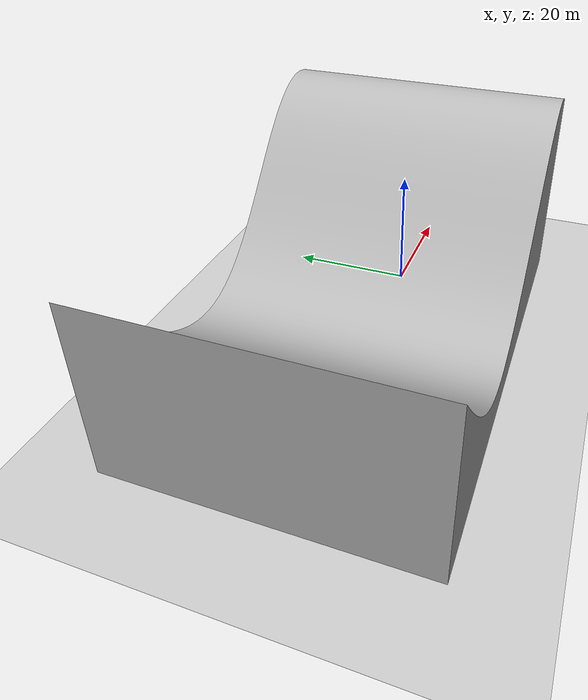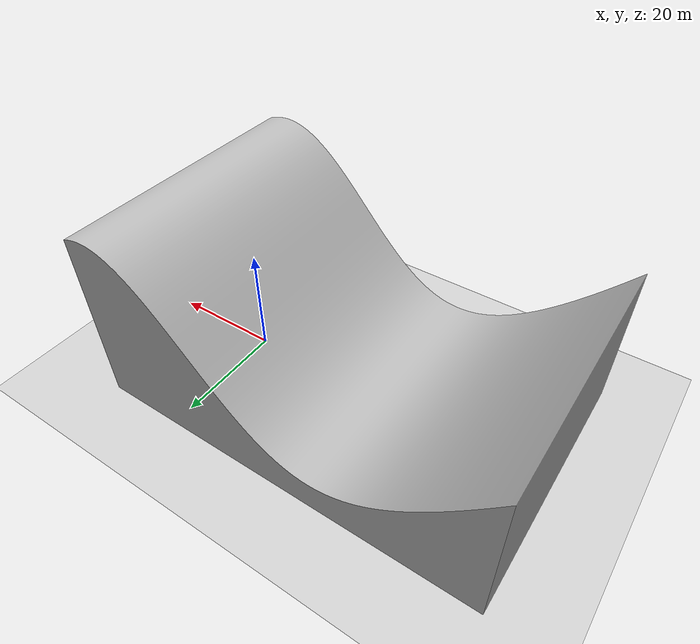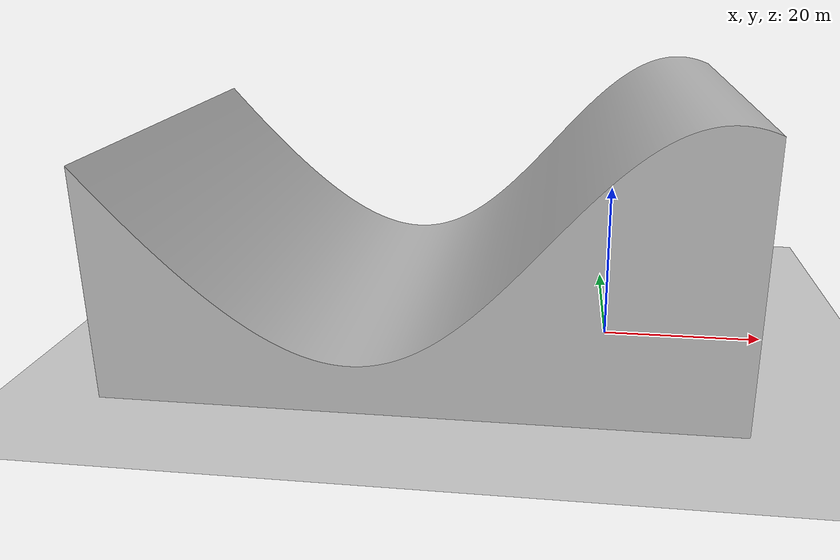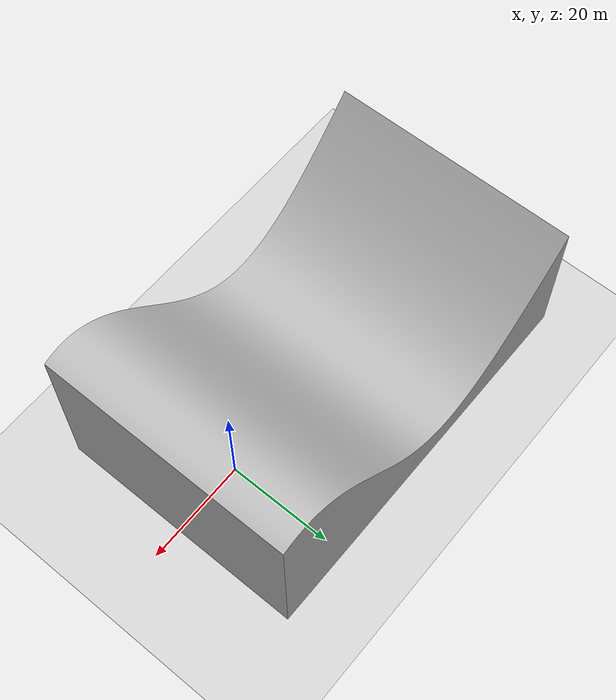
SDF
<sdf version="1.7">
 <world name="default">
  <gazebo><plugin name="car_color_plugin" filename="libcar_test_plugin.so"/></gazebo>
  <model name="ground_plane">
   <static>1</static>
   <link name="link">
    <collision name="collision">
     <geometry><plane><normal>0 0 1</normal><size>100 100</size></plane></geometry>
     <surface>
      <contact><collide_bitmask>65535</collide_bitmask></contact>
      <friction><ode><mu>100</mu><mu2>100</mu2></ode></friction>
     </surface>
    </collision>
    <visual name="visual">
     <cast_shadows>0</cast_shadows>
     <geometry><plane><normal>0 0 1</normal><size>100 100</size></plane></geometry>
     <material>
      <script><uri>file://media/materials/scripts/gazebo.material</uri><name>Gazebo/Grey</name></script>
     </material>
    </visual>
   </link>
  </model>
  <light name="sun" type="directional">
   <pose>0 0 10 0 -0 0</pose>
   <diffuse>0.8 0.8 0.8 1</diffuse>
   <specular>0.2 0.2 0.2 1</specular>
   <attenuation>
    <range>1000</range>
    <constant>0.9</constant>
    <linear>0.01</linear>
    <quadratic>0.001</quadratic>
   </attenuation>
   <direction>-0.5 0.1 -0.9</direction>
   <spot><inner_angle>0</inner_angle><outer_angle>0</outer_angle><falloff>0</falloff></spot>
  </light>
  <gravity>0 0 -9.81</gravity>
  <magnetic_field>6e-06 2.3e-05 -4.2e-05</magnetic_field>
  <atmosphere type="adiabatic"/>
  <physics type="ode">
   <max_step_size>0.001</max_step_size>
   <real_time_factor>1</real_time_factor>
   <real_time_update_rate>1000</real_time_update_rate>
   <ode><constraints><contact_max_correcting_vel>100000</contact_max_correcting_vel></constraints></ode>
  </physics>
  <scene><ambient>0.4 0.4 0.4 1</ambient><background>0.7 0.7 0.7 1</background><shadows>1</shadows></scene>
  <spherical_coordinates>
   <surface_model>EARTH_WGS84</surface_model>
   <latitude_deg>0</latitude_deg>
   <longitude_deg>0</longitude_deg>
   <elevation>0</elevation>
   <heading_deg>0</heading_deg>
  </spherical_coordinates>
  <model name="hill_0">
   <link name="link_0">
    <visual name="visual">
     <pose>-22 0 0 0 -0 0</pose>
     <geometry><mesh><uri>model://hill/meshes/hill1.dae</uri><scale>1 1 1</scale></mesh></geometry>
     <material>
      <script>
       <uri>model://hill/materials/scripts</uri>
       <uri>model://hill/materials/textures</uri>
       <name>hill</name>
      </script>
     </material>
    </visual>
    <collision name="collision">
     <pose>-22 0 0 0 -0 0</pose>
     <geometry><mesh><uri>model://hill/meshes/hill1.dae</uri><scale>1 1 1</scale></mesh></geometry>
     <surface>
      <friction><ode><mu>1000</mu><mu2>1000</mu2><slip1>1000</slip1><slip2>1000</slip2></ode></friction>
     </surface>
    </collision>
   </link>
   <static>1</static>
  </model>
 </world>
</sdf>
